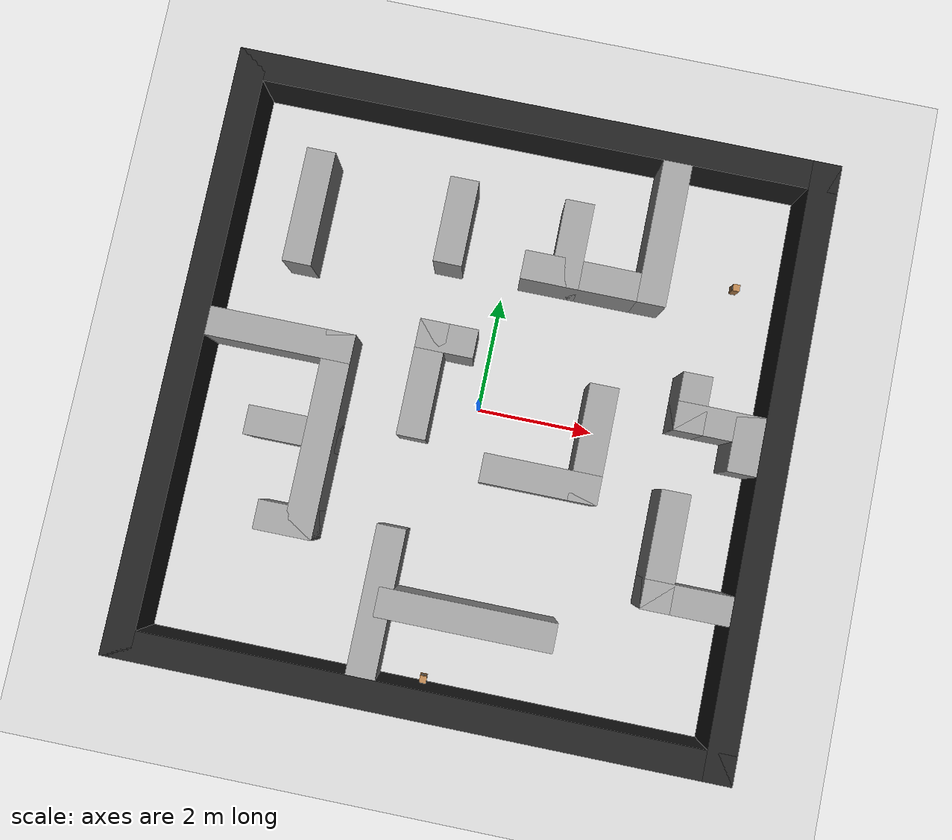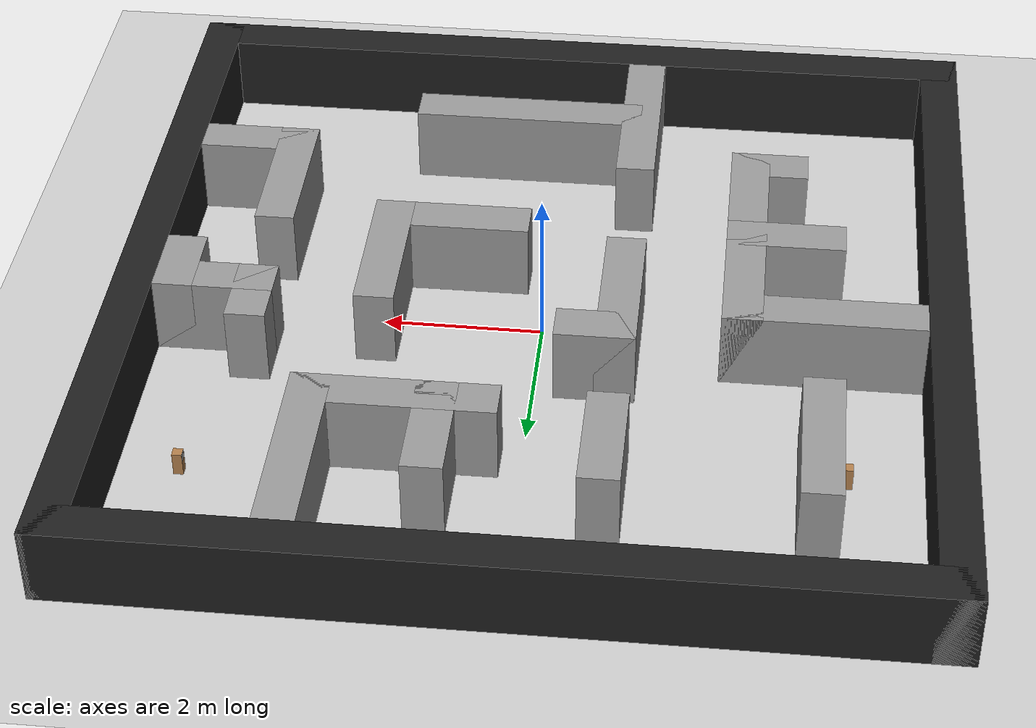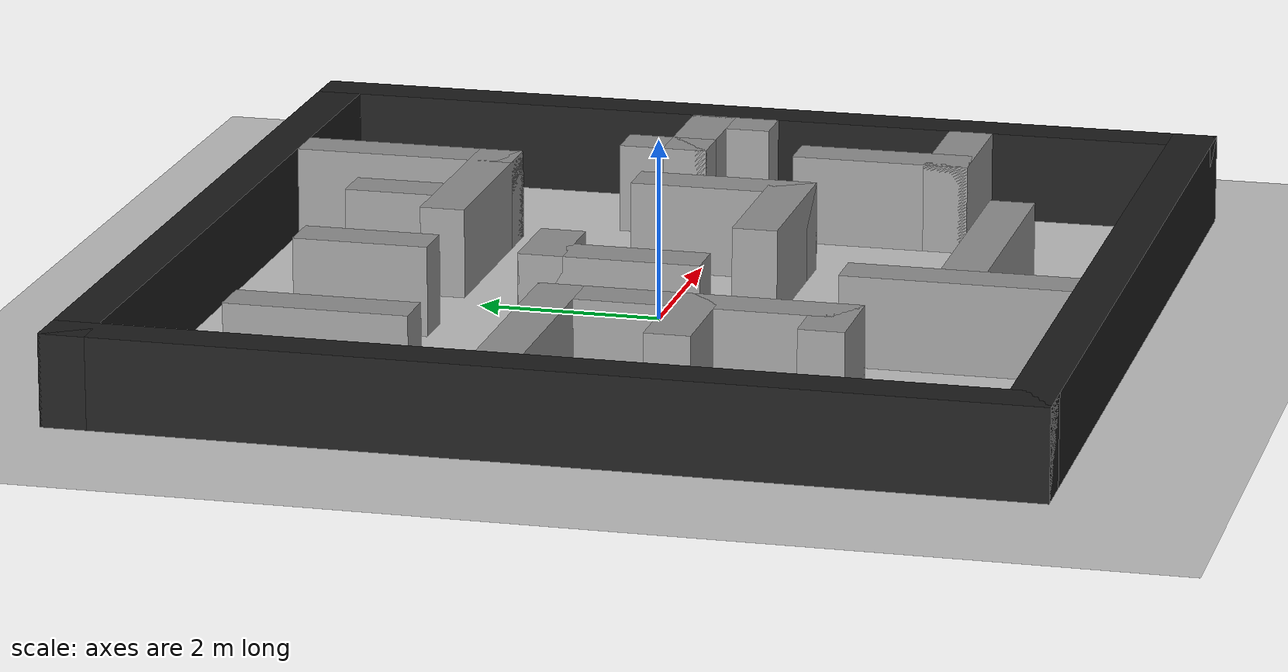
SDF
<sdf version="1.7">
 <world name="default">
  <light name="sun" type="directional">
   <pose>0 0 10 0 -0 0</pose>
   <diffuse>0.8 0.8 0.8 1</diffuse>
   <specular>0.2 0.2 0.2 1</specular>
   <attenuation>
    <range>1000</range>
    <constant>0.9</constant>
    <linear>0.01</linear>
    <quadratic>0.001</quadratic>
   </attenuation>
   <direction>-0.5 0.1 -0.9</direction>
   <spot><inner_angle>0</inner_angle><outer_angle>0</outer_angle><falloff>0</falloff></spot>
  </light>
  <model name="ground_plane">
   <static>1</static>
   <link name="link">
    <collision name="collision">
     <geometry><plane><normal>0 0 1</normal><size>100 100</size></plane></geometry>
     <surface><friction><ode><mu>100</mu><mu2>50</mu2></ode></friction></surface>
    </collision>
    <visual name="visual">
     <cast_shadows>0</cast_shadows>
     <geometry><plane><normal>0 0 1</normal><size>100 100</size></plane></geometry>
     <material>
      <script><uri>file://media/materials/scripts/gazebo.material</uri><name>Gazebo/Grey</name></script>
     </material>
    </visual>
   </link>
  </model>
  <gravity>0 0 -9.8</gravity>
  <magnetic_field>6e-06 2.3e-05 -4.2e-05</magnetic_field>
  <atmosphere type="adiabatic"/>
  <physics type="ode">
   <max_step_size>0.001</max_step_size>
   <real_time_factor>1</real_time_factor>
   <real_time_update_rate>1000</real_time_update_rate>
  </physics>
  <scene><ambient>0.4 0.4 0.4 1</ambient><background>0.7 0.7 0.7 1</background><shadows>1</shadows></scene>
  <audio><device>default</device></audio>
  <spherical_coordinates>
   <surface_model>EARTH_WGS84</surface_model>
   <latitude_deg>0</latitude_deg>
   <longitude_deg>0</longitude_deg>
   <elevation>0</elevation>
   <heading_deg>0</heading_deg>
  </spherical_coordinates>
  <model name="north_wall">
   <static>1</static>
   <pose>5 0 0.5 0 -0 0</pose>
   <link name="link">
    <inertial>
     <mass>1</mass>
     <inertia>
      <ixx>0.166667</ixx>
      <ixy>0</ixy>
      <ixz>0</ixz>
      <iyy>0.166667</iyy>
      <iyz>0</iyz>
      <izz>0.166667</izz>
     </inertia>
    </inertial>
    <collision name="collision"><geometry><box><size>0.5 10.5 1</size></box></geometry></collision>
    <visual name="visual">
     <geometry><box><size>0.5 10.5 1</size></box></geometry>
     <material>
      <script><name>Gazebo/Black</name><uri>file://media/materials/scripts/gazebo.material</uri></script>
     </material>
    </visual>
   </link>
  </model>
  <model name="south_wall">
   <static>1</static>
   <pose>-5 0 0.5 0 -0 0</pose>
   <link name="link">
    <inertial>
     <mass>1</mass>
     <inertia>
      <ixx>0.166667</ixx>
      <ixy>0</ixy>
      <ixz>0</ixz>
      <iyy>0.166667</iyy>
      <iyz>0</iyz>
      <izz>0.166667</izz>
     </inertia>
    </inertial>
    <collision name="collision"><geometry><box><size>0.5 10.5 1</size></box></geometry></collision>
    <visual name="visual">
     <geometry><box><size>0.5 10.5 1</size></box></geometry>
     <material>
      <script><name>Gazebo/Black</name><uri>file://media/materials/scripts/gazebo.material</uri></script>
     </material>
    </visual>
   </link>
  </model>
  <model name="east_wall">
   <static>1</static>
   <pose>0 -5 0.5 0 -0 0</pose>
   <link name="link">
    <inertial>
     <mass>1</mass>
     <inertia>
      <ixx>0.166667</ixx>
      <ixy>0</ixy>
      <ixz>0</ixz>
      <iyy>0.166667</iyy>
      <iyz>0</iyz>
      <izz>0.166667</izz>
     </inertia>
    </inertial>
    <collision name="collision"><geometry><box><size>10.5 0.5 1</size></box></geometry></collision>
    <visual name="visual">
     <geometry><box><size>10.5 0.5 1</size></box></geometry>
     <material>
      <script><name>Gazebo/Black</name><uri>file://media/materials/scripts/gazebo.material</uri></script>
     </material>
    </visual>
   </link>
  </model>
  <model name="west_wall">
   <static>1</static>
   <pose>0 5 0.5 0 -0 0</pose>
   <link name="link">
    <inertial>
     <mass>1</mass>
     <inertia>
      <ixx>0.166667</ixx>
      <ixy>0</ixy>
      <ixz>0</ixz>
      <iyy>0.166667</iyy>
      <iyz>0</iyz>
      <izz>0.166667</izz>
     </inertia>
    </inertial>
    <collision name="collision"><geometry><box><size>10.5 0.5 1</size></box></geometry></collision>
    <visual name="visual">
     <geometry><box><size>10.5 0.5 1</size></box></geometry>
     <material>
      <script><name>Gazebo/Black</name><uri>file://media/materials/scripts/gazebo.material</uri></script>
     </material>
    </visual>
   </link>
  </model>
  <model name="h1">
   <static>1</static>
   <pose>4.5 0.25 0.5 0 -0 0</pose>
   <link name="link">
    <inertial>
     <mass>1</mass>
     <inertia>
      <ixx>0.166667</ixx>
      <ixy>0</ixy>
      <ixz>0</ixz>
      <iyy>0.166667</iyy>
      <iyz>0</iyz>
      <izz>0.166667</izz>
     </inertia>
    </inertial>
    <collision name="collision"><geometry><box><size>0.5 1 1</size></box></geometry></collision>
    <visual name="visual">
     <geometry><box><size>0.5 1 1</size></box></geometry>
     <material>
      <script><name>Gazebo/Grey</name><uri>file://media/materials/scripts/gazebo.material</uri></script>
     </material>
    </visual>
   </link>
  </model>
  <model name="h2">
   <static>1</static>
   <pose>3.5 0.75 0.5 0 -0 0</pose>
   <link name="link">
    <inertial>
     <mass>1</mass>
     <inertia>
      <ixx>0.166667</ixx>
      <ixy>0</ixy>
      <ixz>0</ixz>
      <iyy>0.166667</iyy>
      <iyz>0</iyz>
      <izz>0.166667</izz>
     </inertia>
    </inertial>
    <collision name="collision"><geometry><box><size>0.5 1 1</size></box></geometry></collision>
    <visual name="visual">
     <geometry><box><size>0.5 1 1</size></box></geometry>
     <material>
      <script><name>Gazebo/Grey</name><uri>file://media/materials/scripts/gazebo.material</uri></script>
     </material>
    </visual>
   </link>
  </model>
  <model name="h3">
   <static>1</static>
   <pose>3.5 -1.75 0.5 0 -0 0</pose>
   <link name="link">
    <inertial>
     <mass>1</mass>
     <inertia>
      <ixx>0.166667</ixx>
      <ixy>0</ixy>
      <ixz>0</ixz>
      <iyy>0.166667</iyy>
      <iyz>0</iyz>
      <izz>0.166667</izz>
     </inertia>
    </inertial>
    <collision name="collision"><geometry><box><size>0.5 2 1</size></box></geometry></collision>
    <visual name="visual">
     <geometry><box><size>0.5 2 1</size></box></geometry>
     <material>
      <script><name>Gazebo/Grey</name><uri>file://media/materials/scripts/gazebo.material</uri></script>
     </material>
    </visual>
   </link>
  </model>
  <model name="h4">
   <static>1</static>
   <pose>2.5 3.5 0.5 0 -0 0</pose>
   <link name="link">
    <inertial>
     <mass>1</mass>
     <inertia>
      <ixx>0.166667</ixx>
      <ixy>0</ixy>
      <ixz>0</ixz>
      <iyy>0.166667</iyy>
      <iyz>0</iyz>
      <izz>0.166667</izz>
     </inertia>
    </inertial>
    <collision name="collision"><geometry><box><size>0.5 2.5 1</size></box></geometry></collision>
    <visual name="visual">
     <geometry><box><size>0.5 2.5 1</size></box></geometry>
     <material>
      <script><name>Gazebo/Grey</name><uri>file://media/materials/scripts/gazebo.material</uri></script>
     </material>
    </visual>
   </link>
  </model>
  <model name="h5">
   <static>1</static>
   <pose>2 -0.25 0.5 0 -0 0</pose>
   <link name="link">
    <inertial>
     <mass>1</mass>
     <inertia>
      <ixx>0.166667</ixx>
      <ixy>0</ixy>
      <ixz>0</ixz>
      <iyy>0.166667</iyy>
      <iyz>0</iyz>
      <izz>0.166667</izz>
     </inertia>
    </inertial>
    <collision name="collision"><geometry><box><size>0.5 2 1</size></box></geometry></collision>
    <visual name="visual">
     <geometry><box><size>0.5 2 1</size></box></geometry>
     <material>
      <script><name>Gazebo/Grey</name><uri>file://media/materials/scripts/gazebo.material</uri></script>
     </material>
    </visual>
   </link>
  </model>
  <model name="h6">
   <static>1</static>
   <pose>1 3 0.5 0 -0 0</pose>
   <link name="link">
    <inertial>
     <mass>1</mass>
     <inertia>
      <ixx>0.166667</ixx>
      <ixy>0</ixy>
      <ixz>0</ixz>
      <iyy>0.166667</iyy>
      <iyz>0</iyz>
      <izz>0.166667</izz>
     </inertia>
    </inertial>
    <collision name="collision"><geometry><box><size>0.5 1.5 1</size></box></geometry></collision>
    <visual name="visual">
     <geometry><box><size>0.5 1.5 1</size></box></geometry>
     <material>
      <script><name>Gazebo/Grey</name><uri>file://media/materials/scripts/gazebo.material</uri></script>
     </material>
    </visual>
   </link>
  </model>
  <model name="h7">
   <static>1</static>
   <pose>-1 3 0.5 0 -0 0</pose>
   <link name="link">
    <inertial>
     <mass>1</mass>
     <inertia>
      <ixx>0.166667</ixx>
      <ixy>0</ixy>
      <ixz>0</ixz>
      <iyy>0.166667</iyy>
      <iyz>0</iyz>
      <izz>0.166667</izz>
     </inertia>
    </inertial>
    <collision name="collision"><geometry><box><size>0.5 1.5 1</size></box></geometry></collision>
    <visual name="visual">
     <geometry><box><size>0.5 1.5 1</size></box></geometry>
     <material>
      <script><name>Gazebo/Grey</name><uri>file://media/materials/scripts/gazebo.material</uri></script>
     </material>
    </visual>
   </link>
  </model>
  <model name="h8">
   <static>1</static>
   <pose>-1 0.25 0.5 0 -0 0</pose>
   <link name="link">
    <inertial>
     <mass>1</mass>
     <inertia>
      <ixx>0.166667</ixx>
      <ixy>0</ixy>
      <ixz>0</ixz>
      <iyy>0.166667</iyy>
      <iyz>0</iyz>
      <izz>0.166667</izz>
     </inertia>
    </inertial>
    <collision name="collision"><geometry><box><size>0.5 2 1</size></box></geometry></collision>
    <visual name="visual">
     <geometry><box><size>0.5 2 1</size></box></geometry>
     <material>
      <script><name>Gazebo/Grey</name><uri>file://media/materials/scripts/gazebo.material</uri></script>
     </material>
    </visual>
   </link>
  </model>
  <model name="h9">
   <static>1</static>
   <pose>-1 -3.5 0.5 0 -0 0</pose>
   <link name="link">
    <inertial>
     <mass>1</mass>
     <inertia>
      <ixx>0.166667</ixx>
      <ixy>0</ixy>
      <ixz>0</ixz>
      <iyy>0.166667</iyy>
      <iyz>0</iyz>
      <izz>0.166667</izz>
     </inertia>
    </inertial>
    <collision name="collision"><geometry><box><size>0.5 2.5 1</size></box></geometry></collision>
    <visual name="visual">
     <geometry><box><size>0.5 2.5 1</size></box></geometry>
     <material>
      <script><name>Gazebo/Grey</name><uri>file://media/materials/scripts/gazebo.material</uri></script>
     </material>
    </visual>
   </link>
  </model>
  <model name="h10">
   <static>1</static>
   <pose>-2.5 -1 0.5 0 -0 0</pose>
   <link name="link">
    <inertial>
     <mass>1</mass>
     <inertia>
      <ixx>0.166667</ixx>
      <ixy>0</ixy>
      <ixz>0</ixz>
      <iyy>0.166667</iyy>
      <iyz>0</iyz>
      <izz>0.166667</izz>
     </inertia>
    </inertial>
    <collision name="collision"><geometry><box><size>0.5 3.5 1</size></box></geometry></collision>
    <visual name="visual">
     <geometry><box><size>0.5 3.5 1</size></box></geometry>
     <material>
      <script><name>Gazebo/Grey</name><uri>file://media/materials/scripts/gazebo.material</uri></script>
     </material>
    </visual>
   </link>
  </model>
  <model name="h11">
   <static>1</static>
   <pose>-3.5 2.75 0.5 0 -0 0</pose>
   <link name="link">
    <inertial>
     <mass>1</mass>
     <inertia>
      <ixx>0.166667</ixx>
      <ixy>0</ixy>
      <ixz>0</ixz>
      <iyy>0.166667</iyy>
      <iyz>0</iyz>
      <izz>0.166667</izz>
     </inertia>
    </inertial>
    <collision name="collision"><geometry><box><size>0.5 2 1</size></box></geometry></collision>
    <visual name="visual">
     <geometry><box><size>0.5 2 1</size></box></geometry>
     <material>
      <script><name>Gazebo/Grey</name><uri>file://media/materials/scripts/gazebo.material</uri></script>
     </material>
    </visual>
   </link>
  </model>
  <model name="v12">
   <static>1</static>
   <pose>4 0.5 0.5 0 -0 0</pose>
   <link name="link">
    <inertial>
     <mass>1</mass>
     <inertia>
      <ixx>0.166667</ixx>
      <ixy>0</ixy>
      <ixz>0</ixz>
      <iyy>0.166667</iyy>
      <iyz>0</iyz>
      <izz>0.166667</izz>
     </inertia>
    </inertial>
    <collision name="collision"><geometry><box><size>1.5 0.5 1</size></box></geometry></collision>
    <visual name="visual">
     <geometry><box><size>1.5 0.5 1</size></box></geometry>
     <material>
      <script><name>Gazebo/Grey</name><uri>file://media/materials/scripts/gazebo.material</uri></script>
     </material>
    </visual>
   </link>
  </model>
  <model name="v13">
   <static>1</static>
   <pose>4 -2.5 0.5 0 -0 0</pose>
   <link name="link">
    <inertial>
     <mass>1</mass>
     <inertia>
      <ixx>0.166667</ixx>
      <ixy>0</ixy>
      <ixz>0</ixz>
      <iyy>0.166667</iyy>
      <iyz>0</iyz>
      <izz>0.166667</izz>
     </inertia>
    </inertial>
    <collision name="collision"><geometry><box><size>1.5 0.5 1</size></box></geometry></collision>
    <visual name="visual">
     <geometry><box><size>1.5 0.5 1</size></box></geometry>
     <material>
      <script><name>Gazebo/Grey</name><uri>file://media/materials/scripts/gazebo.material</uri></script>
     </material>
    </visual>
   </link>
  </model>
  <model name="v14">
   <static>1</static>
   <pose>1.5 2.5 0.5 0 -0 0</pose>
   <link name="link">
    <inertial>
     <mass>1</mass>
     <inertia>
      <ixx>0.166667</ixx>
      <ixy>0</ixy>
      <ixz>0</ixz>
      <iyy>0.166667</iyy>
      <iyz>0</iyz>
      <izz>0.166667</izz>
     </inertia>
    </inertial>
    <collision name="collision"><geometry><box><size>2.5 0.5 1</size></box></geometry></collision>
    <visual name="visual">
     <geometry><box><size>2.5 0.5 1</size></box></geometry>
     <material>
      <script><name>Gazebo/Grey</name><uri>file://media/materials/scripts/gazebo.material</uri></script>
     </material>
    </visual>
   </link>
  </model>
  <model name="v15">
   <static>1</static>
   <pose>1.25 -1 0.5 0 -0 0</pose>
   <link name="link">
    <inertial>
     <mass>1</mass>
     <inertia>
      <ixx>0.166667</ixx>
      <ixy>0</ixy>
      <ixz>0</ixz>
      <iyy>0.166667</iyy>
      <iyz>0</iyz>
      <izz>0.166667</izz>
     </inertia>
    </inertial>
    <collision name="collision"><geometry><box><size>2 0.5 1</size></box></geometry></collision>
    <visual name="visual">
     <geometry><box><size>2 0.5 1</size></box></geometry>
     <material>
      <script><name>Gazebo/Grey</name><uri>file://media/materials/scripts/gazebo.material</uri></script>
     </material>
    </visual>
   </link>
  </model>
  <model name="v16">
   <static>1</static>
   <pose>0.5 -3.5 0.5 0 -0 0</pose>
   <link name="link">
    <inertial>
     <mass>1</mass>
     <inertia>
      <ixx>0.166667</ixx>
      <ixy>0</ixy>
      <ixz>0</ixz>
      <iyy>0.166667</iyy>
      <iyz>0</iyz>
      <izz>0.166667</izz>
     </inertia>
    </inertial>
    <collision name="collision"><geometry><box><size>3 0.5 1</size></box></geometry></collision>
    <visual name="visual">
     <geometry><box><size>3 0.5 1</size></box></geometry>
     <material>
      <script><name>Gazebo/Grey</name><uri>file://media/materials/scripts/gazebo.material</uri></script>
     </material>
    </visual>
   </link>
  </model>
  <model name="v17">
   <static>1</static>
   <pose>-0.75 1 0.5 0 -0 0</pose>
   <link name="link">
    <inertial>
     <mass>1</mass>
     <inertia>
      <ixx>0.166667</ixx>
      <ixy>0</ixy>
      <ixz>0</ixz>
      <iyy>0.166667</iyy>
      <iyz>0</iyz>
      <izz>0.166667</izz>
     </inertia>
    </inertial>
    <collision name="collision"><geometry><box><size>1 0.5 1</size></box></geometry></collision>
    <visual name="visual">
     <geometry><box><size>1 0.5 1</size></box></geometry>
     <material>
      <script><name>Gazebo/Grey</name><uri>file://media/materials/scripts/gazebo.material</uri></script>
     </material>
    </visual>
   </link>
  </model>
  <model name="v18">
   <static>1</static>
   <pose>-3.5 0.5 0.5 0 -0 0</pose>
   <link name="link">
    <inertial>
     <mass>1</mass>
     <inertia>
      <ixx>0.166667</ixx>
      <ixy>0</ixy>
      <ixz>0</ixz>
      <iyy>0.166667</iyy>
      <iyz>0</iyz>
      <izz>0.166667</izz>
     </inertia>
    </inertial>
    <collision name="collision"><geometry><box><size>2.5 0.5 1</size></box></geometry></collision>
    <visual name="visual">
     <geometry><box><size>2.5 0.5 1</size></box></geometry>
     <material>
      <script><name>Gazebo/Grey</name><uri>file://media/materials/scripts/gazebo.material</uri></script>
     </material>
    </visual>
   </link>
  </model>
  <model name="v19">
   <static>1</static>
   <pose>-3 -1 0.5 0 -0 0</pose>
   <link name="link">
    <inertial>
     <mass>1</mass>
     <inertia>
      <ixx>0.166667</ixx>
      <ixy>0</ixy>
      <ixz>0</ixz>
      <iyy>0.166667</iyy>
      <iyz>0</iyz>
      <izz>0.166667</izz>
     </inertia>
    </inertial>
    <collision name="collision"><geometry><box><size>1.5 0.5 1</size></box></geometry></collision>
    <visual name="visual">
     <geometry><box><size>1.5 0.5 1</size></box></geometry>
     <material>
      <script><name>Gazebo/Grey</name><uri>file://media/materials/scripts/gazebo.material</uri></script>
     </material>
    </visual>
   </link>
  </model>
  <model name="v20">
   <static>1</static>
   <pose>-2.75 -2.5 0.5 0 -0 0</pose>
   <link name="link">
    <inertial>
     <mass>1</mass>
     <inertia>
      <ixx>0.166667</ixx>
      <ixy>0</ixy>
      <ixz>0</ixz>
      <iyy>0.166667</iyy>
      <iyz>0</iyz>
      <izz>0.166667</izz>
     </inertia>
    </inertial>
    <collision name="collision"><geometry><box><size>1 0.5 1</size></box></geometry></collision>
    <visual name="visual">
     <geometry><box><size>1 0.5 1</size></box></geometry>
     <material>
      <script><name>Gazebo/Grey</name><uri>file://media/materials/scripts/gazebo.material</uri></script>
     </material>
    </visual>
   </link>
  </model>
  <model name="aruco_column_6x6_100mm_42">
   <link name="link">
    <pose>0 0 0.15 0 -0 0</pose>
    <inertial>
     <mass>1</mass>
     <inertia><ixx>1</ixx><ixy>0</ixy><ixz>0</ixz><iyy>1</iyy><iyz>0</iyz><izz>1</izz></inertia>
    </inertial>
    <collision name="collision">
     <geometry><box><size>0.12 0.12 0.3</size></box></geometry>
     <surface>
      <contact>
       <poissons_ratio>0.347</poissons_ratio>
       <elastic_modulus>8.8e+09</elastic_modulus>
       <ode><kp>100000</kp><kd>1</kd><max_vel>1</max_vel><min_depth>0.001</min_depth></ode>
      </contact>
      <friction>
       <torsional>
        <coefficient>1</coefficient>
        <use_patch_radius>0</use_patch_radius>
        <surface_radius>0.05</surface_radius>
       </torsional>
      </friction>
     </surface>
    </collision>
    <visual name="visual">
     <geometry><box><size>0.12 0.12 0.3</size></box></geometry>
     <material>
      <script><uri>file://media/materials/scripts/gazebo.material</uri><name>Gazebo/Wood</name></script>
     </material>
    </visual>
   </link>
   <link name="aruco_6x6_100mm_42::main">
    <pose relative_to="aruco_6x6_100mm_42::__model__">0 0 0 0 -0 0</pose>
    <visual name="main_Visual">
     <geometry><box><size>0.1 0.1 0.001</size></box></geometry>
     <material>
      <script>
       <uri>file://media/materials/scripts</uri>
       <uri>file://media/materials/textures</uri>
       <name>aruco_6x6_100mm_42</name>
      </script>
     </material>
    </visual>
    <inertial>
     <inertia><ixx>1</ixx><ixy>0</ixy><ixz>0</ixz><iyy>1</iyy><iyz>0</iyz><izz>1</izz></inertia>
     <mass>1</mass>
    </inertial>
   </link>
   <frame name="aruco_6x6_100mm_42::__model__" attached_to="aruco_6x6_100mm_42::main">
    <pose relative_to="__model__">-0.06 0 0.24 3.14159 1.57079 3.14159</pose>
   </frame>
   <joint name="aruco_6x6_100mm_42_joint" type="fixed">
    <child>aruco_6x6_100mm_42::main</child>
    <parent>link</parent>
   </joint>
   <pose>4 3 -0.001049 0 -0.000405 0</pose>
  </model>
  <model name="aruco_column_6x6_100mm_2">
   <link name="link">
    <pose>0 0 0.15 0 -0 0</pose>
    <inertial>
     <mass>1</mass>
     <inertia><ixx>1</ixx><ixy>0</ixy><ixz>0</ixz><iyy>1</iyy><iyz>0</iyz><izz>1</izz></inertia>
    </inertial>
    <collision name="collision">
     <geometry><box><size>0.12 0.12 0.3</size></box></geometry>
     <surface>
      <contact>
       <poissons_ratio>0.347</poissons_ratio>
       <elastic_modulus>8.8e+09</elastic_modulus>
       <ode><kp>100000</kp><kd>1</kd><max_vel>1</max_vel><min_depth>0.001</min_depth></ode>
      </contact>
      <friction>
       <torsional>
        <coefficient>1</coefficient>
        <use_patch_radius>0</use_patch_radius>
        <surface_radius>0.05</surface_radius>
       </torsional>
      </friction>
     </surface>
    </collision>
    <visual name="visual">
     <geometry><box><size>0.12 0.12 0.3</size></box></geometry>
     <material>
      <script><uri>file://media/materials/scripts/gazebo.material</uri><name>Gazebo/Wood</name></script>
     </material>
    </visual>
   </link>
   <link name="aruco_6x6_100mm_2::main">
    <pose relative_to="aruco_6x6_100mm_2::__model__">0 0 0 0 -0 0</pose>
    <visual name="main_Visual">
     <geometry><box><size>0.1 0.1 0.001</size></box></geometry>
     <material>
      <script>
       <uri>file://media/materials/scripts</uri>
       <uri>file://media/materials/textures</uri>
       <name>aruco_6x6_100mm_2</name>
      </script>
     </material>
    </visual>
    <inertial>
     <inertia><ixx>1</ixx><ixy>0</ixy><ixz>0</ixz><iyy>1</iyy><iyz>0</iyz><izz>1</izz></inertia>
     <mass>1</mass>
    </inertial>
   </link>
   <frame name="aruco_6x6_100mm_2::__model__" attached_to="aruco_6x6_100mm_2::main">
    <pose relative_to="__model__">-0.06 0 0.14 3.14159 1.57079 3.14159</pose>
   </frame>
   <joint name="aruco_6x6_100mm_2_joint" type="fixed">
    <child>aruco_6x6_100mm_2::main</child>
    <parent>link</parent>
   </joint>
   <pose>-3.83522 2.5 -0.001049 0 -0.000405 0</pose>
  </model>
  <model name="aruco_column_6x6_100mm_0">
   <link name="link">
    <pose>0 0 0.15 0 -0 0</pose>
    <inertial>
     <mass>1</mass>
     <inertia><ixx>1</ixx><ixy>0</ixy><ixz>0</ixz><iyy>1</iyy><iyz>0</iyz><izz>1</izz></inertia>
    </inertial>
    <collision name="collision">
     <geometry><box><size>0.12 0.12 0.3</size></box></geometry>
     <surface>
      <contact>
       <poissons_ratio>0.347</poissons_ratio>
       <elastic_modulus>8.8e+09</elastic_modulus>
       <ode><kp>100000</kp><kd>1</kd><max_vel>1</max_vel><min_depth>0.001</min_depth></ode>
      </contact>
      <friction>
       <torsional>
        <coefficient>1</coefficient>
        <use_patch_radius>0</use_patch_radius>
        <surface_radius>0.05</surface_radius>
       </torsional>
      </friction>
     </surface>
    </collision>
    <visual name="visual">
     <geometry><box><size>0.12 0.12 0.3</size></box></geometry>
     <material>
      <script><uri>file://media/materials/scripts/gazebo.material</uri><name>Gazebo/Wood</name></script>
     </material>
    </visual>
   </link>
   <link name="aruco_6x6_100mm_0::main">
    <pose relative_to="aruco_6x6_100mm_0::__model__">0 0 0 0 -0 0</pose>
    <visual name="main_Visual">
     <geometry><box><size>0.1 0.1 0.001</size></box></geometry>
     <material>
      <script>
       <uri>file://media/materials/scripts</uri>
       <uri>file://media/materials/textures</uri>
       <name>aruco_6x6_100mm_0</name>
      </script>
     </material>
    </visual>
    <inertial>
     <inertia><ixx>1</ixx><ixy>0</ixy><ixz>0</ixz><iyy>1</iyy><iyz>0</iyz><izz>1</izz></inertia>
     <mass>1</mass>
    </inertial>
   </link>
   <frame name="aruco_6x6_100mm_0::__model__" attached_to="aruco_6x6_100mm_0::main">
    <pose relative_to="__model__">-0.06 0 0.19 3.14159 1.57079 3.14159</pose>
   </frame>
   <joint name="aruco_6x6_100mm_0_joint" type="fixed">
    <child>aruco_6x6_100mm_0::main</child>
    <parent>link</parent>
   </joint>
   <pose>0 -4.69 -0.001049 -0 -0.000405 -1.57</pose>
  </model>
 </world>
</sdf>
